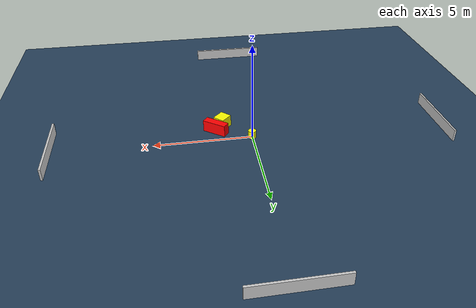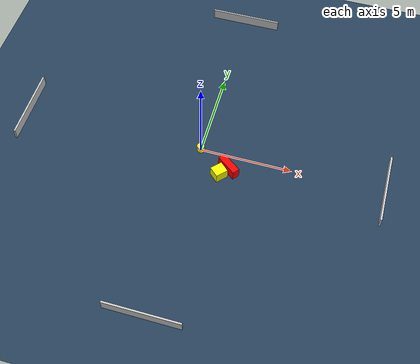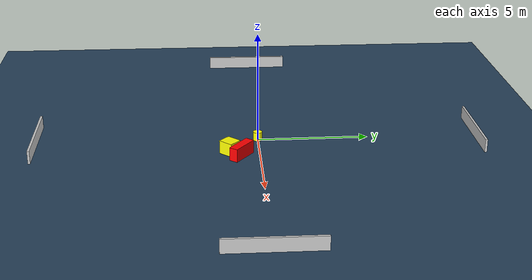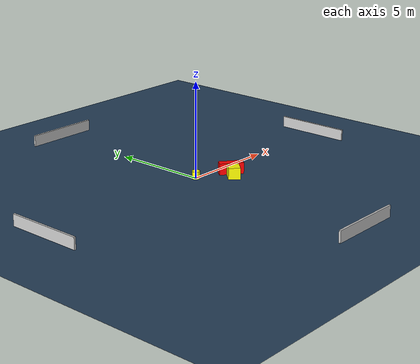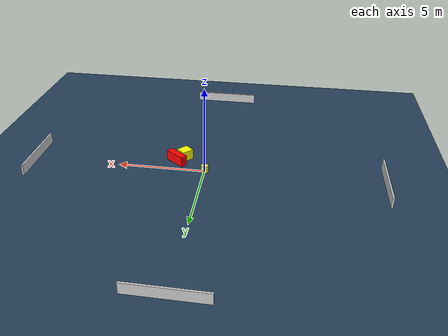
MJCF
<?xml version="1.0" ?>
<mujoco model="generated_environment">
  <option timestep="0.01" integrator="RK4" cone="elliptic"/>
  <default>
    <geom density="1"/>
  </default>
  <asset>
    <texture builtin="gradient" height="3072" name="skybox" rgb1="0.3 0.5 0.7" rgb2="0 0 0" type="skybox" width="512"/>
    <texture builtin="checker" height="300" name="groundplane" rgb1="0.2 0.3 0.4" rgb2="0.1 0.2 0.3" type="2d" width="300"/>
    <material name="groundplane" reflectance="0.2" texrepeat="5 5" texture="groundplane"/>
  </asset>
  <worldbody>
    <light dir="0 0 -1" directional="true" pos="0 0 1.5"/>
    <geom condim="3" friction="0.5 0.005 0.001" material="groundplane" name="floor" pos="0 0 0" size="0 0 0.05" type="plane"/>
    <body name="walls">
      <geom name="wall_1" condim="4" pos="-10.0 0.0 0.3" rgba="0.800000011920929 0.800000011920929 0.800000011920929 1.0" size="0.05 2.0 0.3" type="box"/>
      <geom name="wall_2" condim="4" pos="10.0 0.0 0.3" rgba="0.800000011920929 0.800000011920929 0.800000011920929 1.0" size="0.05 2.0 0.3" type="box"/>
      <geom name="wall_3" condim="4" pos="0.0 -10.0 0.3" rgba="0.800000011920929 0.800000011920929 0.800000011920929 1.0" size="2.0 0.05 0.3" type="box"/>
      <geom name="wall_4" condim="4" pos="0.0 10.0 0.3" rgba="0.800000011920929 0.800000011920929 0.800000011920929 1.0" size="2.0 0.05 0.3" type="box"/>
    </body>
    <body name="robot">
      <joint name="joint_x" type="slide" pos="0 0 0" axis="1 0 0"/>
      <joint name="joint_y" type="slide" pos="0 0 0" axis="0 1 0"/>
      <geom name="robot" type="cylinder" pos="0.0 0.0 0.2" size="0.2 0.2 0.0" mass="5.0" friction="1.0 0.005 0.0001" condim="4" rgba="1.0 1.0 0.0 1.0"/>
    </body>
    <body name="obstacle_1_movable">
      <geom name="obstacle_1_movable" condim="4" pos="1.3758533586976973 -1.3134589681052196 0.3" euler="0 0 136.7600832794241" friction="0.0 0.005 0.001" rgba="1.0 1.0 0.0 1.0" size="0.3062081014002669 0.3427538730919225 0.3" type="box" mass="0.1"/>
      <joint type="free"/>
    </body>
    <body name="obstacle_2_static">
      <geom name="obstacle_2_static" condim="4" pos="1.7714295551841 -0.8088839486363095 0.3" euler="0 0 232.41114533976562" friction="0.0 0.005 0.001" rgba="1.0 0.0 0.0 1.0" size="0.20196016773278533 0.6320988468440494 0.3" type="box"/>
    </body>
  </worldbody>
  <actuator>
    <motor name="actuator_x" joint="joint_x" gear="1" ctrlrange="-1 1"/>
    <motor name="actuator_y" joint="joint_y" gear="1" ctrlrange="-1 1"/>
  </actuator>
</mujoco>
